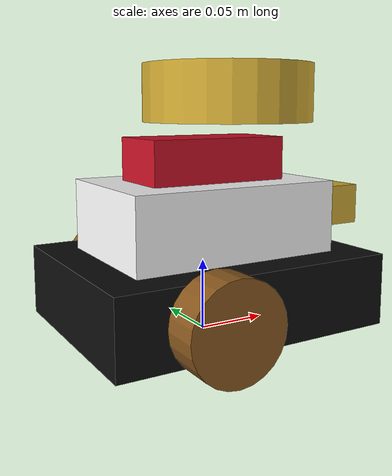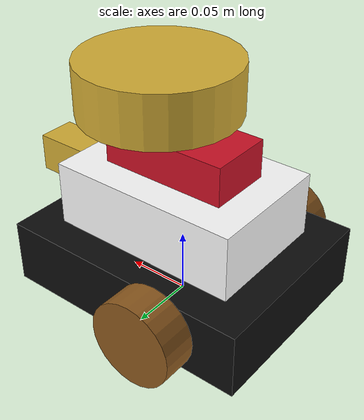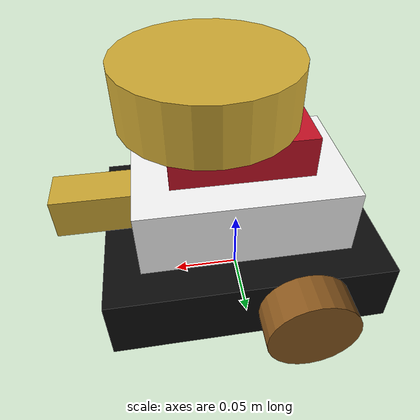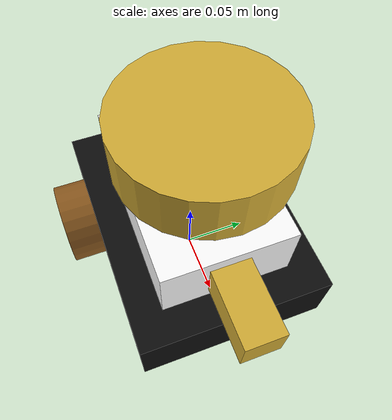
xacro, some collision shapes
<?xml version="1.0"?>
<robot name="two_wheel_pyramid_robot" xmlns:xacro="http://www.ros.org/wiki/xacro">
<xacro:include filename="$(find my_robot_description)/urdf/robot.gazebo"/>

<xacro:arg name="mesh_path" default="package://my_robot_description/meshes/"/>

  <!-- PYRAMID CHASSIS - 3 stacked steps, Egyptian flag color order  -->
  <!-- (Black bottom, white middle, Red top - widest to narrowest)   -->

  <!-- Step 1 - base / bottom step (Black) -->
  <xacro:property name="step1_length" value="0.2"/>
  <xacro:property name="step1_width" value="0.15"/>
  <xacro:property name="step1_height" value="0.05"/>
  <xacro:property name="step1_mass" value="0.3"/>

  <!-- Step 2 - middle step (WHITE) -->
  <xacro:property name="step2_length" value="0.15"/>
  <xacro:property name="step2_width" value="0.1"/>
  <xacro:property name="step2_height" value="0.05"/>
  <xacro:property name="step2_mass" value="0.15"/>

  <!-- Step 3 - top step (Red) -->
  <xacro:property name="step3_length" value="0.1"/>
  <xacro:property name="step3_width" value="0.05"/>
  <xacro:property name="step3_height" value="0.03"/>
  <xacro:property name="step3_mass" value="0.08"/>

  <!-- Colors -->
  <xacro:property name="color_red" value="0.80 0.07 0.15 1.0"/>     <!-- Egyptian flag red -->
  <xacro:property name="color_white" value="1.0 1.0 1.0 1.0"/>       <!-- Egyptian flag white -->
  <xacro:property name="color_black" value="0.05 0.05 0.05 1.0"/>    <!-- Egyptian flag black -->
  <xacro:property name="color_gold" value="0.83 0.68 0.21 1.0"/>     <!-- golden eagle accent -->
  <xacro:property name="color_wheel" value="0.55 0.35 0.12 1.0"/>    <!-- antique bronze, complements the gold -->

  <!-- Wheels -->
  <xacro:property name="wheel_radius" value="0.0325"/>
  <xacro:property name="wheel_width" value="0.026"/>
  <xacro:property name="wheel_mass" value="0.1"/>
  <xacro:property name="wheel_y_offset" value="0.088"/>

  <!-- caster wheel -->
  <xacro:property name="caster_radius" value="0.015"/>
  <xacro:property name="caster_mass" value="0.1"/>
  <link name="base_footprint"/>

  <joint name="base_footprint_joint" type="fixed">
    <parent link="base_footprint"/>
    <child link="base_link"/>
    <origin xyz="0 0 ${wheel_radius}" rpy="0 0 0"/>
  </joint>
  <!-- CHASSIS STEP MACRO - box link (visual/collision/inertial)     -->
  <!-- identical structure for all 3 steps, only size/mass/color     -->
  <!-- differ, so it's parameterized the same way the wheel is.      -->
    <xacro:macro name="chassis_step" params="name length width height mass color">
    <link name="${name}">
      <visual>
        <geometry>
          <box size="${length} ${width} ${height}"/>
        </geometry>
        <material name="${name}_material">
          <color rgba="${color}"/>
        </material>
      </visual>
      <collision>
        <geometry>
          <box size="${length} ${width} ${height}"/>
        </geometry>
      </collision>
      <inertial>
        <mass value="${mass}"/>
        <origin xyz="0 0 0" rpy="0 0 0"/>
        <inertia ixx="${(1/12) * mass * (width*width + height*height)}" ixy="0.0" ixz="0.0"
                 iyy="${(1/12) * mass * (length*length + height*height)}" iyz="0.0"
                 izz="${(1/12) * mass * (length*length + width*width)}"/>
      </inertial>
    </link>
  </xacro:macro>
  <!-- ============== STEP 1 (base_link) - Black ============== -->
  <xacro:chassis_step name="base_link" length="${step1_length}" width="${step1_width}"
                       height="${step1_height}" mass="${step1_mass}" color="${color_black}"/>

  <!-- ============== STEP 2 (middle_step_link) - WHITE ============== -->
  <joint name="middle_step_joint" type="fixed">
    <parent link="base_link"/>
    <child link="middle_step_link"/>
    <origin xyz="0 0 ${step1_height/2 + step2_height/2}" rpy="0 0 0"/>
  </joint>

  <xacro:chassis_step name="middle_step_link" length="${step2_length}" width="${step2_width}"
                       height="${step2_height}" mass="${step2_mass}" color="${color_white}"/>

  <!-- ============== STEP 3 (top_step_link) - RED ============== -->
  <joint name="top_step_joint" type="fixed">
    <parent link="middle_step_link"/>
    <child link="top_step_link"/>
    <origin xyz="0 0 ${step2_height/2 + step3_height/2}" rpy="0 0 0"/>
  </joint>

  <xacro:chassis_step name="top_step_link" length="${step3_length}" width="${step3_width}"
                       height="${step3_height}" mass="${step3_mass}" color="${color_red}"/>
  <!-- CAMERA - mounted on the MIDDLE (white) step, colored GOLD     -->
  <link name="camera_link">
    <visual>
      <origin xyz="0 0 0" rpy="0 0 0"/>
      <geometry>
        <mesh filename="$(arg mesh_path)zed.stl"/>
      </geometry>
      <material name="camera_gold">
        <color rgba="${color_gold}"/>
      </material>
    </visual>
    <collision>
      <origin xyz="0 0 0" rpy="0 0 0"/>
      <geometry>
        <box size="0.08 0.03 0.03"/>
      </geometry>
    </collision>
    <inertial>
      <mass value="0.1"/>
      <origin xyz="0 0 0" rpy="0 0 0"/>
      <inertia ixx="0.00005" ixy="0.0" ixz="0.0"
               iyy="0.00005" iyz="0.0"
               izz="0.00005"/>
    </inertial>
  </link>

  <joint name="camera_joint" type="fixed">
    <parent link="middle_step_link"/>
    <child link="camera_link"/>
    <origin xyz="${step2_length/2 + 0.016} 0 0" rpy="0 0 0"/>
  </joint>

  <link name="camera_optical_link"/>

  <joint name="camera_optical_joint" type="fixed">
    <parent link="camera_link"/>
    <child link="camera_optical_link"/>
    <origin xyz="0 0 0" rpy="-1.5708 0 -1.5708"/>
  </joint>

  <!-- LIDAR - mounted on TOP of the top (black) step, colored GOLD  -->
  <link name="lidar_link">
    <visual>
      <origin xyz="0 0 0" rpy="0 0 0"/>
      <geometry>
        <mesh filename="$(arg mesh_path)lidar.STL"/>
      </geometry>
      <material name="lidar_gold">
        <color rgba="${color_gold}"/>
      </material>
    </visual>
    <collision>
      <origin xyz="0 0 0" rpy="0 0 0"/>
      <geometry>
        <cylinder radius="0.06" length="0.04"/>
      </geometry>
    </collision>
    <inertial>
      <mass value="0.2"/>
      <origin xyz="0 0 0" rpy="0 0 0"/>
      <inertia ixx="0.0001" ixy="0.0" ixz="0.0"
               iyy="0.0001" iyz="0.0"
               izz="0.0001"/>
    </inertial>
  </link>

  <joint name="lidar_joint" type="fixed">
    <parent link="top_step_link"/>
    <child link="lidar_link"/>
    <origin xyz="0.02 0 ${step3_height/2 + 0.03}" rpy="0 0 0"/>
  </joint>

  <!-- WHEELS - 2 wheels (differential drive), antique bronze color  -->
  <xacro:macro name="wheel" params="prefix y_reflect">
    <joint name="${prefix}_wheel_joint" type="continuous">
      <parent link="base_link"/>
      <child link="${prefix}_wheel_link"/>
      <origin xyz="${-step1_length/2+2*wheel_radius} ${y_reflect * wheel_y_offset} 0" rpy="0 0 0"/>
      <axis xyz="0 1 0"/>
    </joint>

    <link name="${prefix}_wheel_link">
      <visual>
        <origin xyz="0 0 0" rpy="${pi/2} 0 0"/>
        <geometry>
          <cylinder radius="${wheel_radius}" length="${wheel_width}"/>
        </geometry>
        <material name="wheel_bronze">
          <color rgba="${color_wheel}"/>
        </material>
      </visual>
      <collision>
        <origin xyz="0 0 0" rpy="${pi/2} 0 0"/>
        <geometry>
          <cylinder radius="${wheel_radius}" length="${wheel_width}"/>
        </geometry>
      </collision>
      <inertial>
        <mass value="${wheel_mass}"/>
        <origin xyz="0 0 0" rpy="${pi/2} 0 0"/>
        <inertia ixx="${(1/12) * wheel_mass * (3*wheel_radius*wheel_radius + wheel_width*wheel_width)}" ixy="0.0" ixz="0.0"
                 iyy="${(1/12) * wheel_mass * (3*wheel_radius*wheel_radius + wheel_width*wheel_width)}" iyz="0.0"
                 izz="${(1/2) * wheel_mass * (wheel_radius*wheel_radius)}"/>
      </inertial>
    </link>
  </xacro:macro>

  <xacro:wheel prefix="left"  y_reflect="1"/>
  <xacro:wheel prefix="right" y_reflect="-1"/>

<joint name="caster_wheel_joint" type="fixed">
  <parent link="base_link"/>
  <child link="caster_wheel_link"/>
  <!-- rear of the chassis, centered in y, dropped so the sphere still touches the ground -->
  <origin xyz="${step1_length/2 - 2*caster_radius} 0 ${-(wheel_radius - caster_radius)}" rpy="0 0 0"/>
</joint>

<link name="caster_wheel_link">
  <visual>
    <geometry><sphere radius="${caster_radius}"/></geometry>
    <material name="caster_red"><color rgba="1.0 0.0 0.0 1.0"/></material>
  </visual>
  <collision>
    <geometry><sphere radius="${caster_radius}"/></geometry>
  </collision>
  <inertial>
    <mass value="${caster_mass}"/>
    <origin xyz="0 0 0" rpy="0 0 0"/>
    <inertia ixx="${(2/5)*caster_mass*caster_radius*caster_radius}" ixy="0.0" ixz="0.0"
             iyy="${(2/5)*caster_mass*caster_radius*caster_radius}" iyz="0.0"
             izz="${(2/5)*caster_mass*caster_radius*caster_radius}"/>
  </inertial>
</link>
</robot>
